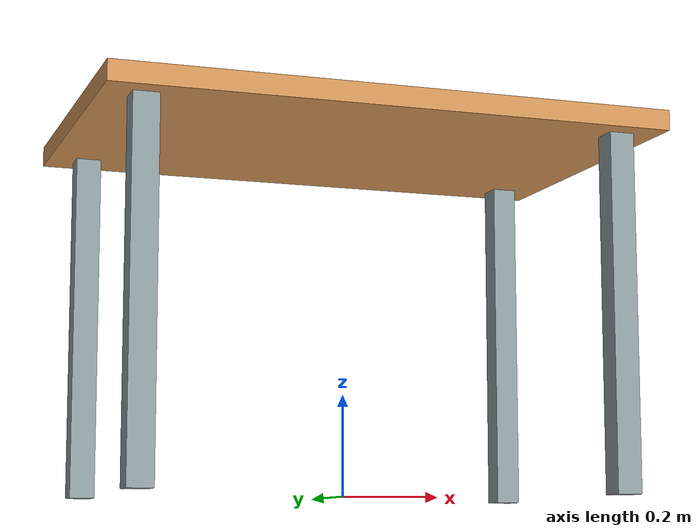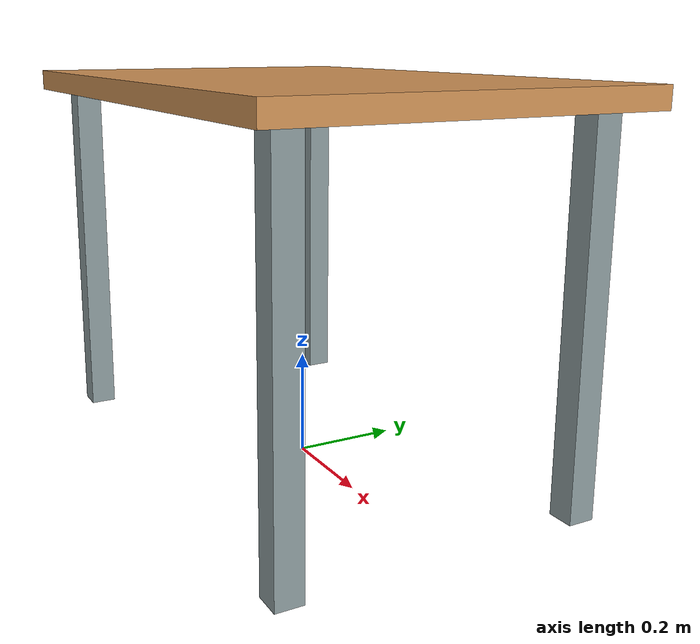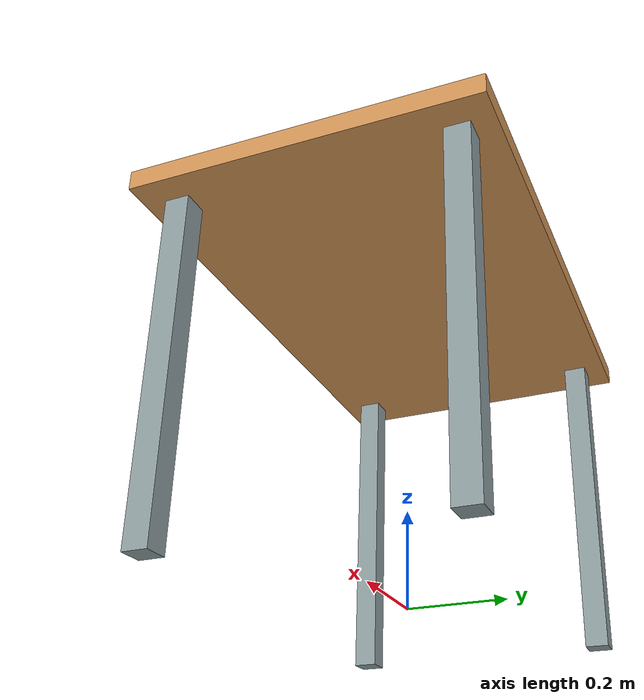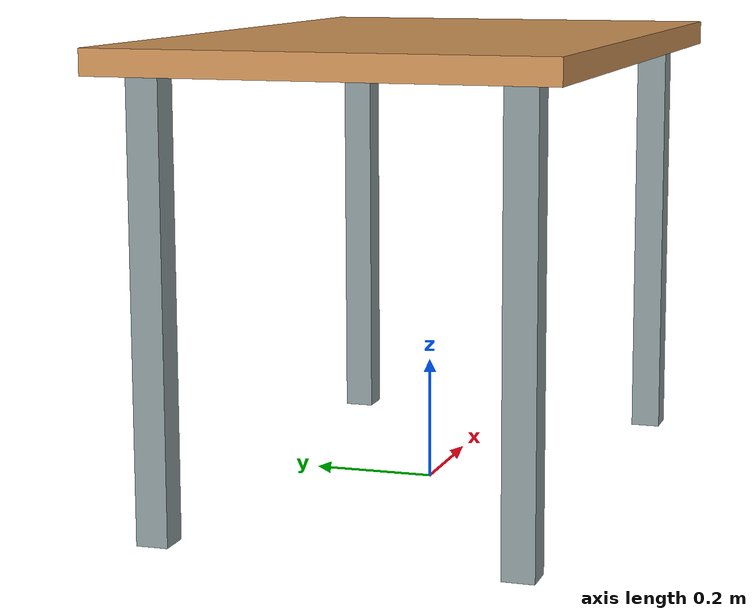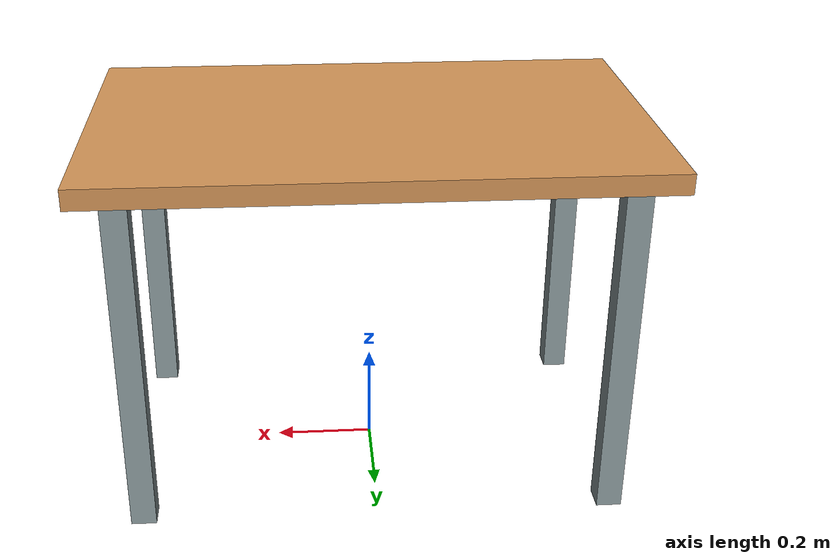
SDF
<?xml version="1.0"?>
<sdf version="1.9">
  <model name="table">
    <static>true</static>

    <link name="table_link">
      <visual name="top_visual">
        <pose>0 0 0.72 0 0 0</pose>
        <geometry>
          <box>
            <size>1.10 0.70 0.04</size>
          </box>
        </geometry>
        <material>
          <ambient>0.70 0.48 0.28 1</ambient>
          <diffuse>0.82 0.58 0.34 1</diffuse>
          <specular>0.15 0.12 0.08 1</specular>
        </material>
      </visual>
      <collision name="top_collision">
        <pose>0 0 0.72 0 0 0</pose>
        <geometry>
          <box>
            <size>1.10 0.70 0.04</size>
          </box>
        </geometry>
        <surface>
          <friction>
            <ode>
              <mu>1.2</mu>
              <mu2>1.2</mu2>
            </ode>
          </friction>
          <contact>
            <ode>
              <kp>1000000.0</kp>
              <kd>10.0</kd>
            </ode>
          </contact>
        </surface>
      </collision>

      <visual name="leg_front_left_visual">
        <pose>0.47 0.28 0.35 0 0 0</pose>
        <geometry>
          <box>
            <size>0.05 0.05 0.70</size>
          </box>
        </geometry>
        <material>
          <ambient>0.44 0.49 0.50 1</ambient>
          <diffuse>0.55 0.61 0.62 1</diffuse>
          <specular>0.25 0.25 0.25 1</specular>
        </material>
      </visual>
      <collision name="leg_front_left_collision">
        <pose>0.47 0.28 0.35 0 0 0</pose>
        <geometry>
          <box>
            <size>0.05 0.05 0.70</size>
          </box>
        </geometry>
      </collision>

      <visual name="leg_front_right_visual">
        <pose>0.47 -0.28 0.35 0 0 0</pose>
        <geometry>
          <box>
            <size>0.05 0.05 0.70</size>
          </box>
        </geometry>
        <material>
          <ambient>0.44 0.49 0.50 1</ambient>
          <diffuse>0.55 0.61 0.62 1</diffuse>
          <specular>0.25 0.25 0.25 1</specular>
        </material>
      </visual>
      <collision name="leg_front_right_collision">
        <pose>0.47 -0.28 0.35 0 0 0</pose>
        <geometry>
          <box>
            <size>0.05 0.05 0.70</size>
          </box>
        </geometry>
      </collision>

      <visual name="leg_back_left_visual">
        <pose>-0.47 0.28 0.35 0 0 0</pose>
        <geometry>
          <box>
            <size>0.05 0.05 0.70</size>
          </box>
        </geometry>
        <material>
          <ambient>0.44 0.49 0.50 1</ambient>
          <diffuse>0.55 0.61 0.62 1</diffuse>
          <specular>0.25 0.25 0.25 1</specular>
        </material>
      </visual>
      <collision name="leg_back_left_collision">
        <pose>-0.47 0.28 0.35 0 0 0</pose>
        <geometry>
          <box>
            <size>0.05 0.05 0.70</size>
          </box>
        </geometry>
      </collision>

      <visual name="leg_back_right_visual">
        <pose>-0.47 -0.28 0.35 0 0 0</pose>
        <geometry>
          <box>
            <size>0.05 0.05 0.70</size>
          </box>
        </geometry>
        <material>
          <ambient>0.44 0.49 0.50 1</ambient>
          <diffuse>0.55 0.61 0.62 1</diffuse>
          <specular>0.25 0.25 0.25 1</specular>
        </material>
      </visual>
      <collision name="leg_back_right_collision">
        <pose>-0.47 -0.28 0.35 0 0 0</pose>
        <geometry>
          <box>
            <size>0.05 0.05 0.70</size>
          </box>
        </geometry>
      </collision>
    </link>
  </model>
</sdf>
